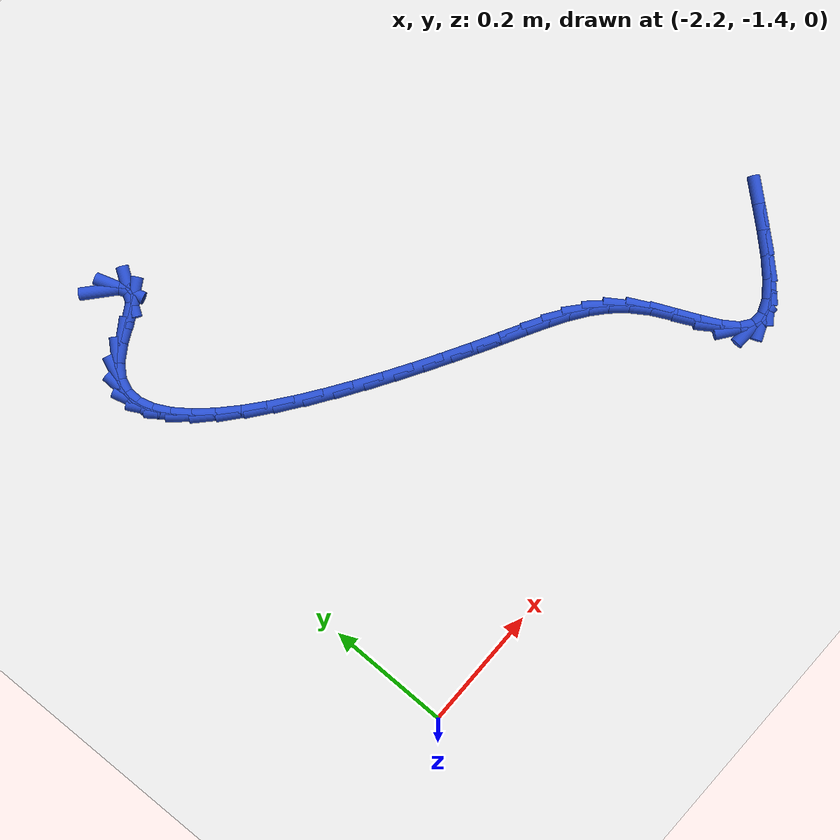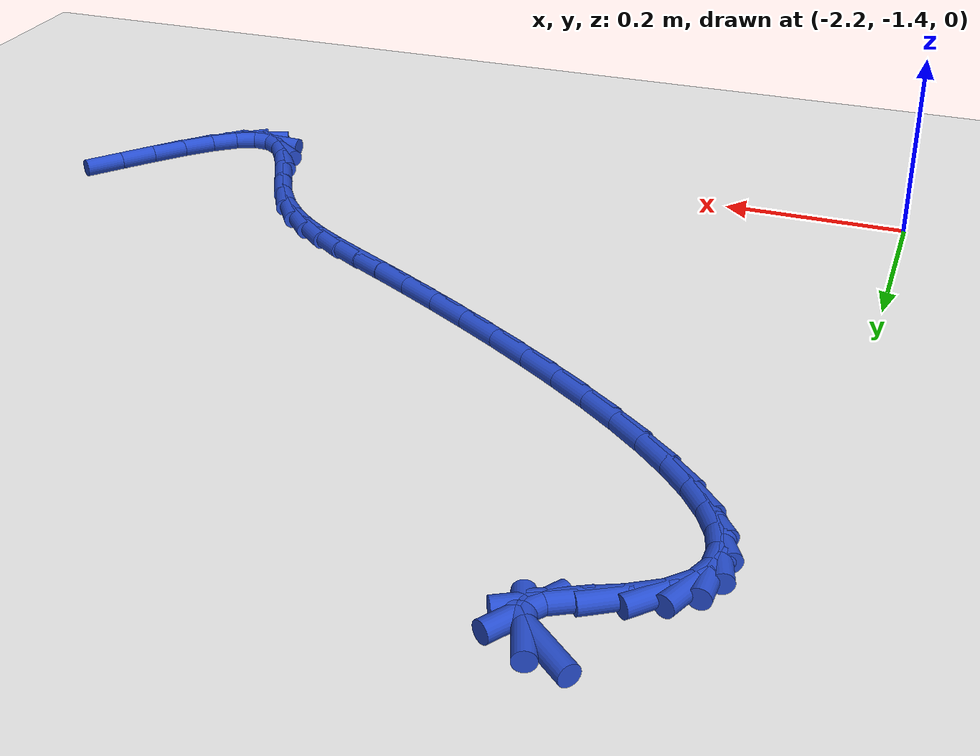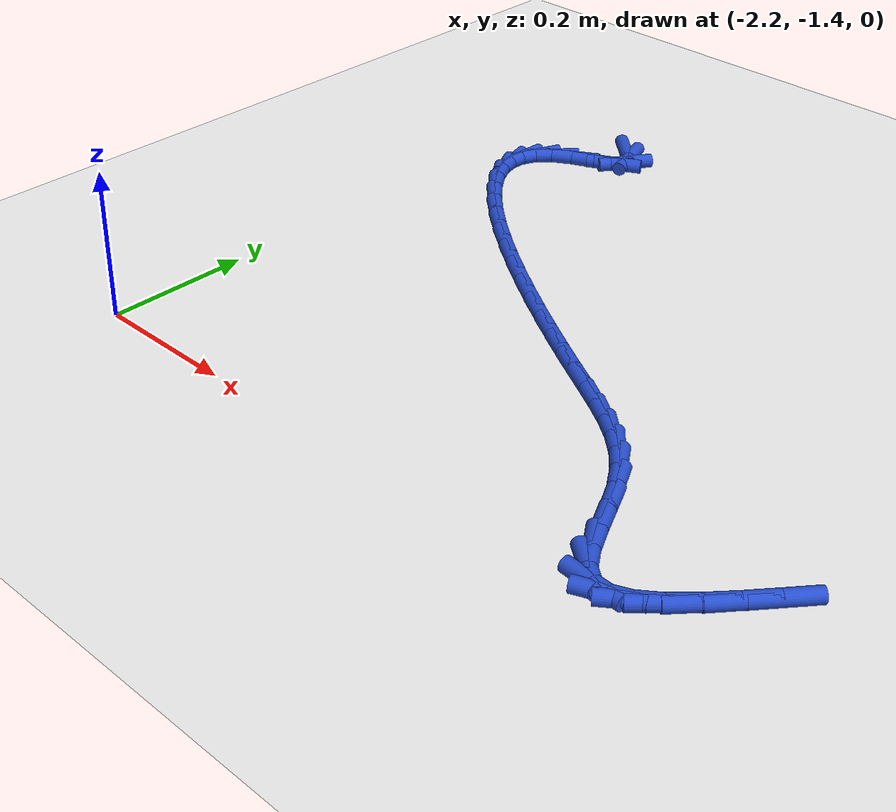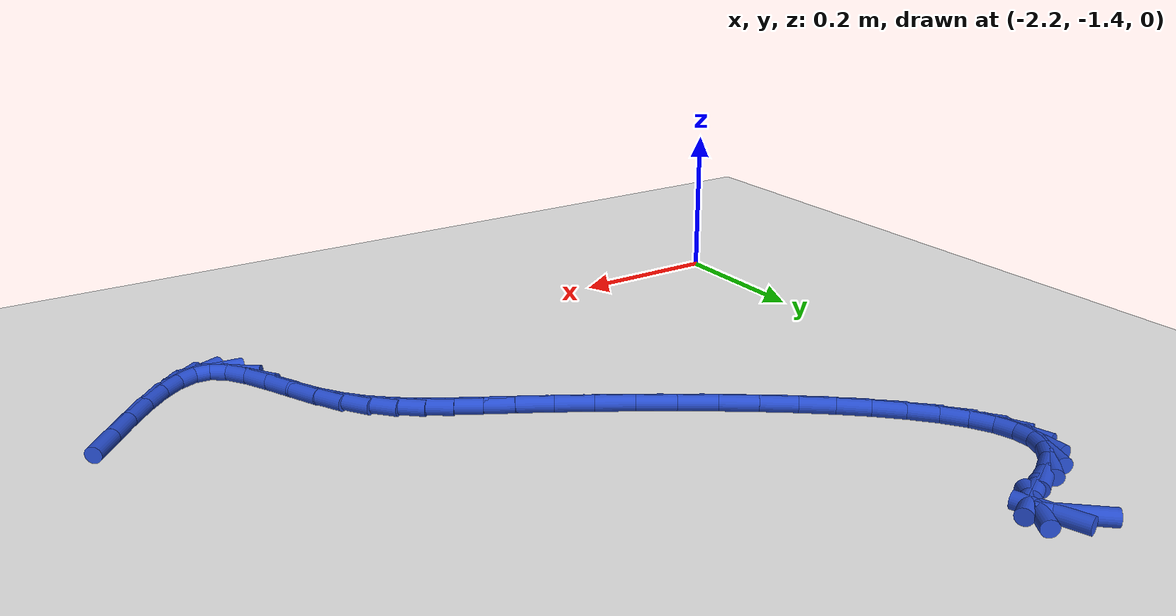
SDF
<sdf version="1.6">
 <world name="default">
  <model name="ground_plane">
   <static>1</static>
   <link name="link">
    <collision name="collision">
     <geometry><plane><normal>0 0 1</normal><size>100 100</size></plane></geometry>
     <surface><friction><ode><mu>100</mu><mu2>50</mu2></ode></friction></surface>
    </collision>
    <visual name="visual">
     <cast_shadows>0</cast_shadows>
     <geometry><plane><normal>0 0 1</normal><size>100 100</size></plane></geometry>
     <material>
      <script><uri>file://media/materials/scripts/gazebo.material</uri><name>Gazebo/WhiteGlow</name></script>
     </material>
    </visual>
   </link>
  </model>
  <model name="line">
   <link name="link_145">
    <pose>-2.030162844414838 -0.5912224815961385 0.01 0 1.57 -0.7261657209361108</pose>
    <collision name="collision">
     <geometry><cylinder><radius>0.01</radius><length>0.08</length></cylinder></geometry>
    </collision>
    <visual name="visual">
     <material>
      <script><name>Gazebo/Blue</name><uri>file://media/materials/scripts/gazebo.material</uri></script>
     </material>
     <geometry><cylinder><radius>0.01</radius><length>0.08</length></cylinder></geometry>
    </visual>
   </link>
   <link name="link_146">
    <pose>-2.013460323360209 -0.606054922284187 0.01 0 1.57 -1.2543917531883304</pose>
    <collision name="collision">
     <geometry><cylinder><radius>0.01</radius><length>0.08</length></cylinder></geometry>
    </collision>
    <visual name="visual">
     <material>
      <script><name>Gazebo/Blue</name><uri>file://media/materials/scripts/gazebo.material</uri></script>
     </material>
     <geometry><cylinder><radius>0.01</radius><length>0.08</length></cylinder></geometry>
    </visual>
   </link>
   <link name="link_147">
    <pose>-2.0087793544693997 -0.6203521539263475 0.01 0 1.57 0.9689626849431296</pose>
    <collision name="collision">
     <geometry><cylinder><radius>0.01</radius><length>0.08</length></cylinder></geometry>
    </collision>
    <visual name="visual">
     <material>
      <script><name>Gazebo/Blue</name><uri>file://media/materials/scripts/gazebo.material</uri></script>
     </material>
     <geometry><cylinder><radius>0.01</radius><length>0.08</length></cylinder></geometry>
    </visual>
   </link>
   <link name="link_148">
    <pose>-2.0182861949265973 -0.6341937333175833 0.01 0 1.57 0.5002300565618323</pose>
    <collision name="collision">
     <geometry><cylinder><radius>0.01</radius><length>0.08</length></cylinder></geometry>
    </collision>
    <visual name="visual">
     <material>
      <script><name>Gazebo/Blue</name><uri>file://media/materials/scripts/gazebo.material</uri></script>
     </material>
     <geometry><cylinder><radius>0.01</radius><length>0.08</length></cylinder></geometry>
    </visual>
   </link>
   <link name="link_149">
    <pose>-2.0430859880539374 -0.6477493310798641 0.01 0 1.57 0.4192204213474961</pose>
    <collision name="collision">
     <geometry><cylinder><radius>0.01</radius><length>0.08</length></cylinder></geometry>
    </collision>
    <visual name="visual">
     <material>
      <script><name>Gazebo/Blue</name><uri>file://media/materials/scripts/gazebo.material</uri></script>
     </material>
     <geometry><cylinder><radius>0.01</radius><length>0.08</length></cylinder></geometry>
    </visual>
   </link>
   <link name="link_150">
    <pose>-2.0750105889687465 -0.6619761407570041 0.01 0 1.57 0.5427422706837467</pose>
    <collision name="collision">
     <geometry><cylinder><radius>0.01</radius><length>0.08</length></cylinder></geometry>
    </collision>
    <visual name="visual">
     <material>
      <script><name>Gazebo/Blue</name><uri>file://media/materials/scripts/gazebo.material</uri></script>
     </material>
     <geometry><cylinder><radius>0.01</radius><length>0.08</length></cylinder></geometry>
    </visual>
   </link>
   <link name="link_151">
    <pose>-2.1018292847203317 -0.6781521959910403 0.01 0 1.57 0.8143027024822866</pose>
    <collision name="collision">
     <geometry><cylinder><radius>0.01</radius><length>0.08</length></cylinder></geometry>
    </collision>
    <visual name="visual">
     <material>
      <script><name>Gazebo/Blue</name><uri>file://media/materials/scripts/gazebo.material</uri></script>
     </material>
     <geometry><cylinder><radius>0.01</radius><length>0.08</length></cylinder></geometry>
    </visual>
   </link>
   <link name="link_152">
    <pose>-2.1192553346125145 -0.696615912021647 0.01 0 1.57 1.1704821652790771</pose>
    <collision name="collision">
     <geometry><cylinder><radius>0.01</radius><length>0.08</length></cylinder></geometry>
    </collision>
    <visual name="visual">
     <material>
      <script><name>Gazebo/Blue</name><uri>file://media/materials/scripts/gazebo.material</uri></script>
     </material>
     <geometry><cylinder><radius>0.01</radius><length>0.08</length></cylinder></geometry>
    </visual>
   </link>
   <link name="link_153">
    <pose>-2.1279332944278586 -0.7171232526328234 0.01 0 1.57 1.5417761079908923</pose>
    <collision name="collision">
     <geometry><cylinder><radius>0.01</radius><length>0.08</length></cylinder></geometry>
    </collision>
    <visual name="visual">
     <material>
      <script><name>Gazebo/Blue</name><uri>file://media/materials/scripts/gazebo.material</uri></script>
     </material>
     <geometry><cylinder><radius>0.01</radius><length>0.08</length></cylinder></geometry>
    </visual>
   </link>
   <link name="link_154">
    <pose>-2.1285805783713565 -0.7394215760634799 0.01 0 1.57 -1.2981100875725686</pose>
    <collision name="collision">
     <geometry><cylinder><radius>0.01</radius><length>0.08</length></cylinder></geometry>
    </collision>
    <visual name="visual">
     <material>
      <script><name>Gazebo/Blue</name><uri>file://media/materials/scripts/gazebo.material</uri></script>
     </material>
     <geometry><cylinder><radius>0.01</radius><length>0.08</length></cylinder></geometry>
    </visual>
   </link>
   <link name="link_155">
    <pose>-2.1219146006479983 -0.7632582405525258 0.01 0 1.57 -1.085087069462422</pose>
    <collision name="collision">
     <geometry><cylinder><radius>0.01</radius><length>0.08</length></cylinder></geometry>
    </collision>
    <visual name="visual">
     <material>
      <script><name>Gazebo/Blue</name><uri>file://media/materials/scripts/gazebo.material</uri></script>
     </material>
     <geometry><cylinder><radius>0.01</radius><length>0.08</length></cylinder></geometry>
    </visual>
   </link>
   <link name="link_156">
    <pose>-2.1086527754627764 -0.788380604338871 0.01 0 1.57 -0.9390522747976603</pose>
    <collision name="collision">
     <geometry><cylinder><radius>0.01</radius><length>0.08</length></cylinder></geometry>
    </collision>
    <visual name="visual">
     <material>
      <script><name>Gazebo/Blue</name><uri>file://media/materials/scripts/gazebo.material</uri></script>
     </material>
     <geometry><cylinder><radius>0.01</radius><length>0.08</length></cylinder></geometry>
    </visual>
   </link>
   <link name="link_157">
    <pose>-2.0895125170206805 -0.8145360256614254 0.01 0 1.57 -0.8367718883720618</pose>
    <collision name="collision">
     <geometry><cylinder><radius>0.01</radius><length>0.08</length></cylinder></geometry>
    </collision>
    <visual name="visual">
     <material>
      <script><name>Gazebo/Blue</name><uri>file://media/materials/scripts/gazebo.material</uri></script>
     </material>
     <geometry><cylinder><radius>0.01</radius><length>0.08</length></cylinder></geometry>
    </visual>
   </link>
   <link name="link_158">
    <pose>-2.065211239526703 -0.8414718627590989 0.01 0 1.57 -0.7626071348747895</pose>
    <collision name="collision">
     <geometry><cylinder><radius>0.01</radius><length>0.08</length></cylinder></geometry>
    </collision>
    <visual name="visual">
     <material>
      <script><name>Gazebo/Blue</name><uri>file://media/materials/scripts/gazebo.material</uri></script>
     </material>
     <geometry><cylinder><radius>0.01</radius><length>0.08</length></cylinder></geometry>
    </visual>
   </link>
   <link name="link_159">
    <pose>-2.0364663571858346 -0.8689354738708011 0.01 0 1.57 -0.7069621017891347</pose>
    <collision name="collision">
     <geometry><cylinder><radius>0.01</radius><length>0.08</length></cylinder></geometry>
    </collision>
    <visual name="visual">
     <material>
      <script><name>Gazebo/Blue</name><uri>file://media/materials/scripts/gazebo.material</uri></script>
     </material>
     <geometry><cylinder><radius>0.01</radius><length>0.08</length></cylinder></geometry>
    </visual>
   </link>
   <link name="link_160">
    <pose>-2.003995284203066 -0.8966742172354418 0.01 0 1.57 -0.6639481867999857</pose>
    <collision name="collision">
     <geometry><cylinder><radius>0.01</radius><length>0.08</length></cylinder></geometry>
    </collision>
    <visual name="visual">
     <material>
      <script><name>Gazebo/Blue</name><uri>file://media/materials/scripts/gazebo.material</uri></script>
     </material>
     <geometry><cylinder><radius>0.01</radius><length>0.08</length></cylinder></geometry>
    </visual>
   </link>
   <link name="link_161">
    <pose>-1.9685154347833898 -0.9244354510919309 0.01 0 1.57 -0.6298536738179968</pose>
    <collision name="collision">
     <geometry><cylinder><radius>0.01</radius><length>0.08</length></cylinder></geometry>
    </collision>
    <visual name="visual">
     <material>
      <script><name>Gazebo/Blue</name><uri>file://media/materials/scripts/gazebo.material</uri></script>
     </material>
     <geometry><cylinder><radius>0.01</radius><length>0.08</length></cylinder></geometry>
    </visual>
   </link>
   <link name="link_162">
    <pose>-1.930744223131795 -0.951966533679178 0.01 0 1.57 -0.6022613243931447</pose>
    <collision name="collision">
     <geometry><cylinder><radius>0.01</radius><length>0.08</length></cylinder></geometry>
    </collision>
    <visual name="visual">
     <material>
      <script><name>Gazebo/Blue</name><uri>file://media/materials/scripts/gazebo.material</uri></script>
     </material>
     <geometry><cylinder><radius>0.01</radius><length>0.08</length></cylinder></geometry>
    </visual>
   </link>
   <link name="link_163">
    <pose>-1.8913990634532745 -0.9790148232360935 0.01 0 1.57 -0.579546902381902</pose>
    <collision name="collision">
     <geometry><cylinder><radius>0.01</radius><length>0.08</length></cylinder></geometry>
    </collision>
    <visual name="visual">
     <material>
      <script><name>Gazebo/Blue</name><uri>file://media/materials/scripts/gazebo.material</uri></script>
     </material>
     <geometry><cylinder><radius>0.01</radius><length>0.08</length></cylinder></geometry>
    </visual>
   </link>
   <link name="link_164">
    <pose>-1.8511973699528181 -1.0053276780015863 0.01 0 1.57 -0.5605892077406804</pose>
    <collision name="collision">
     <geometry><cylinder><radius>0.01</radius><length>0.08</length></cylinder></geometry>
    </collision>
    <visual name="visual">
     <material>
      <script><name>Gazebo/Blue</name><uri>file://media/materials/scripts/gazebo.material</uri></script>
     </material>
     <geometry><cylinder><radius>0.01</radius><length>0.08</length></cylinder></geometry>
    </visual>
   </link>
   <link name="link_165">
    <pose>-1.810856556835418 -1.030652456214567 0.01 0 1.57 -0.5445983439669438</pose>
    <collision name="collision">
     <geometry><cylinder><radius>0.01</radius><length>0.08</length></cylinder></geometry>
    </collision>
    <visual name="visual">
     <material>
      <script><name>Gazebo/Blue</name><uri>file://media/materials/scripts/gazebo.material</uri></script>
     </material>
     <geometry><cylinder><radius>0.01</radius><length>0.08</length></cylinder></geometry>
    </visual>
   </link>
   <link name="link_166">
    <pose>-1.7710940383060647 -1.0547365161139446 0.01 0 1.57 -0.5310123489114267</pose>
    <collision name="collision">
     <geometry><cylinder><radius>0.01</radius><length>0.08</length></cylinder></geometry>
    </collision>
    <visual name="visual">
     <material>
      <script><name>Gazebo/Blue</name><uri>file://media/materials/scripts/gazebo.material</uri></script>
     </material>
     <geometry><cylinder><radius>0.01</radius><length>0.08</length></cylinder></geometry>
    </visual>
   </link>
   <link name="link_167">
    <pose>-1.732627228569749 -1.0773272159386296 0.01 0 1.57 -0.5194359905816127</pose>
    <collision name="collision">
     <geometry><cylinder><radius>0.01</radius><length>0.08</length></cylinder></geometry>
    </collision>
    <visual name="visual">
     <material>
      <script><name>Gazebo/Blue</name><uri>file://media/materials/scripts/gazebo.material</uri></script>
     </material>
     <geometry><cylinder><radius>0.01</radius><length>0.08</length></cylinder></geometry>
    </visual>
   </link>
   <link name="link_168">
    <pose>-1.6961735418314634 -1.0981719139275314 0.01 0 1.57 -0.5107562554602995</pose>
    <collision name="collision">
     <geometry><cylinder><radius>0.01</radius><length>0.08</length></cylinder></geometry>
    </collision>
    <visual name="visual">
     <material>
      <script><name>Gazebo/Blue</name><uri>file://media/materials/scripts/gazebo.material</uri></script>
     </material>
     <geometry><cylinder><radius>0.01</radius><length>0.08</length></cylinder></geometry>
    </visual>
   </link>
   <link name="link_169">
    <pose>-1.662401626943206 -1.117096074327786 0.01 0 1.57 -0.5183594563248677</pose>
    <collision name="collision">
     <geometry><cylinder><radius>0.01</radius><length>0.08</length></cylinder></geometry>
    </collision>
    <visual name="visual">
     <material>
      <script><name>Gazebo/Blue</name><uri>file://media/materials/scripts/gazebo.material</uri></script>
     </material>
     <geometry><cylinder><radius>0.01</radius><length>0.08</length></cylinder></geometry>
    </visual>
   </link>
   <link name="link_170">
    <pose>-1.6314731024469638 -1.1347372566782736 0.01 0 1.57 -0.5544436595150436</pose>
    <collision name="collision">
     <geometry><cylinder><radius>0.01</radius><length>0.08</length></cylinder></geometry>
    </collision>
    <visual name="visual">
     <material>
      <script><name>Gazebo/Blue</name><uri>file://media/materials/scripts/gazebo.material</uri></script>
     </material>
     <geometry><cylinder><radius>0.01</radius><length>0.08</length></cylinder></geometry>
    </visual>
   </link>
   <link name="link_171">
    <pose>-1.6032488220391319 -1.1522147465807997 0.01 0 1.57 -0.6230460385546155</pose>
    <collision name="collision">
     <geometry><cylinder><radius>0.01</radius><length>0.08</length></cylinder></geometry>
    </collision>
    <visual name="visual">
     <material>
      <script><name>Gazebo/Blue</name><uri>file://media/materials/scripts/gazebo.material</uri></script>
     </material>
     <geometry><cylinder><radius>0.01</radius><length>0.08</length></cylinder></geometry>
    </visual>
   </link>
   <link name="link_172">
    <pose>-1.5775856878742134 -1.1706541587037018 0.01 0 1.57 -0.7233802329610419</pose>
    <collision name="collision">
     <geometry><cylinder><radius>0.01</radius><length>0.08</length></cylinder></geometry>
    </collision>
    <visual name="visual">
     <material>
      <script><name>Gazebo/Blue</name><uri>file://media/materials/scripts/gazebo.material</uri></script>
     </material>
     <geometry><cylinder><radius>0.01</radius><length>0.08</length></cylinder></geometry>
    </visual>
   </link>
   <link name="link_173">
    <pose>-1.5543406021067103 -1.191181107715318 0.01 0 1.57 -0.8472727988536034</pose>
    <collision name="collision">
     <geometry><cylinder><radius>0.01</radius><length>0.08</length></cylinder></geometry>
    </collision>
    <visual name="visual">
     <material>
      <script><name>Gazebo/Blue</name><uri>file://media/materials/scripts/gazebo.material</uri></script>
     </material>
     <geometry><cylinder><radius>0.01</radius><length>0.08</length></cylinder></geometry>
    </visual>
   </link>
   <link name="link_174">
    <pose>-1.5333704668911259 -1.2149212082839862 0.01 0 1.57 -0.9798637364788625</pose>
    <collision name="collision">
     <geometry><cylinder><radius>0.01</radius><length>0.08</length></cylinder></geometry>
    </collision>
    <visual name="visual">
     <material>
      <script><name>Gazebo/Blue</name><uri>file://media/materials/scripts/gazebo.material</uri></script>
     </material>
     <geometry><cylinder><radius>0.01</radius><length>0.08</length></cylinder></geometry>
    </visual>
   </link>
   <link name="link_175">
    <pose>-1.5145321788083115 -1.243000038062706 0.01 0 1.57 -1.0902588613077713</pose>
    <collision name="collision">
     <geometry><cylinder><radius>0.01</radius><length>0.08</length></cylinder></geometry>
    </collision>
    <visual name="visual">
     <material>
      <script><name>Gazebo/Blue</name><uri>file://media/materials/scripts/gazebo.material</uri></script>
     </material>
     <geometry><cylinder><radius>0.01</radius><length>0.08</length></cylinder></geometry>
    </visual>
   </link>
   <link name="link_176">
    <pose>-1.4975400302362603 -1.2755961218937448 0.01 0 1.57 -1.1309377265788543</pose>
    <collision name="collision">
     <geometry><cylinder><radius>0.01</radius><length>0.08</length></cylinder></geometry>
    </collision>
    <visual name="visual">
     <material>
      <script><name>Gazebo/Blue</name><uri>file://media/materials/scripts/gazebo.material</uri></script>
     </material>
     <geometry><cylinder><radius>0.01</radius><length>0.08</length></cylinder></geometry>
    </visual>
   </link>
   <link name="link_177">
    <pose>-1.481594874409759 -1.309478169382691 0.01 0 1.57 -1.1013132384967874</pose>
    <collision name="collision">
     <geometry><cylinder><radius>0.01</radius><length>0.08</length></cylinder></geometry>
    </collision>
    <visual name="visual">
     <material>
      <script><name>Gazebo/Blue</name><uri>file://media/materials/scripts/gazebo.material</uri></script>
     </material>
     <geometry><cylinder><radius>0.01</radius><length>0.08</length></cylinder></geometry>
    </visual>
   </link>
   <link name="link_178">
    <pose>-1.465782051803875 -1.3406477550747709 0.01 0 1.57 -0.974648278645489</pose>
    <collision name="collision">
     <geometry><cylinder><radius>0.01</radius><length>0.08</length></cylinder></geometry>
    </collision>
    <visual name="visual">
     <material>
      <script><name>Gazebo/Blue</name><uri>file://media/materials/scripts/gazebo.material</uri></script>
     </material>
     <geometry><cylinder><radius>0.01</radius><length>0.08</length></cylinder></geometry>
    </visual>
   </link>
   <link name="link_179">
    <pose>-1.449186902893678 -1.3651064535152133 0.01 0 1.57 -0.6459340721403852</pose>
    <collision name="collision">
     <geometry><cylinder><radius>0.01</radius><length>0.08</length></cylinder></geometry>
    </collision>
    <visual name="visual">
     <material>
      <script><name>Gazebo/Blue</name><uri>file://media/materials/scripts/gazebo.material</uri></script>
     </material>
     <geometry><cylinder><radius>0.01</radius><length>0.08</length></cylinder></geometry>
    </visual>
   </link>
   <link name="link_180">
    <pose>-1.4309015815501616 -1.378890083476739 0.01 0 1.57 -0.06398397633198691</pose>
    <collision name="collision">
     <geometry><cylinder><radius>0.01</radius><length>0.08</length></cylinder></geometry>
    </collision>
    <visual name="visual">
     <material>
      <script><name>Gazebo/Blue</name><uri>file://media/materials/scripts/gazebo.material</uri></script>
     </material>
     <geometry><cylinder><radius>0.01</radius><length>0.08</length></cylinder></geometry>
    </visual>
   </link>
   <link name="link_181">
    <pose>-1.4104492059314901 -1.3802004965373613 0.01 0 1.57 0.4023036007954021</pose>
    <collision name="collision">
     <geometry><cylinder><radius>0.01</radius><length>0.08</length></cylinder></geometry>
    </collision>
    <visual name="visual">
     <material>
      <script><name>Gazebo/Blue</name><uri>file://media/materials/scripts/gazebo.material</uri></script>
     </material>
     <geometry><cylinder><radius>0.01</radius><length>0.08</length></cylinder></geometry>
    </visual>
   </link>
   <link name="link_182">
    <pose>-1.3880339526681684 -1.3706625541098576 0.01 0 1.57 0.6533488088391748</pose>
    <collision name="collision">
     <geometry><cylinder><radius>0.01</radius><length>0.08</length></cylinder></geometry>
    </collision>
    <visual name="visual">
     <material>
      <script><name>Gazebo/Blue</name><uri>file://media/materials/scripts/gazebo.material</uri></script>
     </material>
     <geometry><cylinder><radius>0.01</radius><length>0.08</length></cylinder></geometry>
    </visual>
   </link>
   <link name="link_183">
    <pose>-1.3639201379864652 -1.3522033800941744 0.01 0 1.57 0.7835398189330791</pose>
    <collision name="collision">
     <geometry><cylinder><radius>0.01</radius><length>0.08</length></cylinder></geometry>
    </collision>
    <visual name="visual">
     <material>
      <script><name>Gazebo/Blue</name><uri>file://media/materials/scripts/gazebo.material</uri></script>
     </material>
     <geometry><cylinder><radius>0.01</radius><length>0.08</length></cylinder></geometry>
    </visual>
   </link>
   <link name="link_184">
    <pose>-1.3383720781126491 -1.3267500983902585 0.01 0 1.57 0.8517296502269842</pose>
    <collision name="collision">
     <geometry><cylinder><radius>0.01</radius><length>0.08</length></cylinder></geometry>
    </collision>
    <visual name="visual">
     <material>
      <script><name>Gazebo/Blue</name><uri>file://media/materials/scripts/gazebo.material</uri></script>
     </material>
     <geometry><cylinder><radius>0.01</radius><length>0.08</length></cylinder></geometry>
    </visual>
   </link>
   <link name="link_185">
    <pose>-1.3116540892729882 -1.2962298328980553 0.01 0 1.57 0.8835826873277587</pose>
    <collision name="collision">
     <geometry><cylinder><radius>0.01</radius><length>0.08</length></cylinder></geometry>
    </collision>
    <visual name="visual">
     <material>
      <script><name>Gazebo/Blue</name><uri>file://media/materials/scripts/gazebo.material</uri></script>
     </material>
     <geometry><cylinder><radius>0.01</radius><length>0.08</length></cylinder></geometry>
    </visual>
   </link>
   <link name="link_186">
    <pose>-1.2840304876937518 -1.2625697075175122 0.01 0 1.57 0.8896779742686567</pose>
    <collision name="collision">
     <geometry><cylinder><radius>0.01</radius><length>0.08</length></cylinder></geometry>
    </collision>
    <visual name="visual">
     <material>
      <script><name>Gazebo/Blue</name><uri>file://media/materials/scripts/gazebo.material</uri></script>
     </material>
     <geometry><cylinder><radius>0.01</radius><length>0.08</length></cylinder></geometry>
    </visual>
   </link>
  </model>
 </world>
</sdf>
